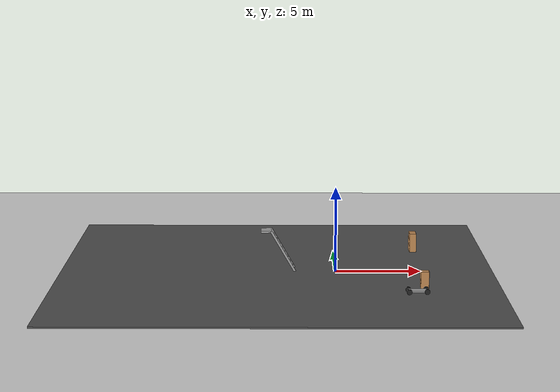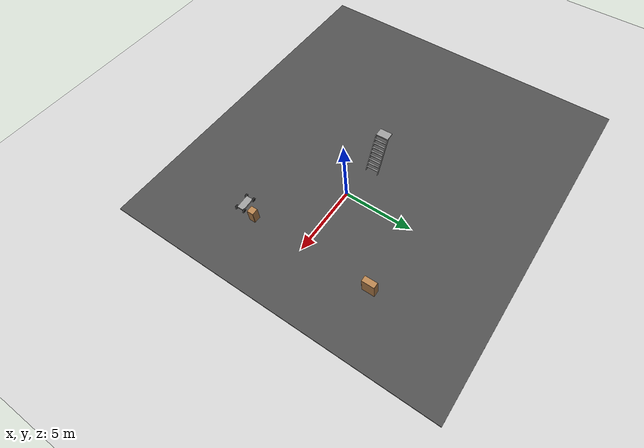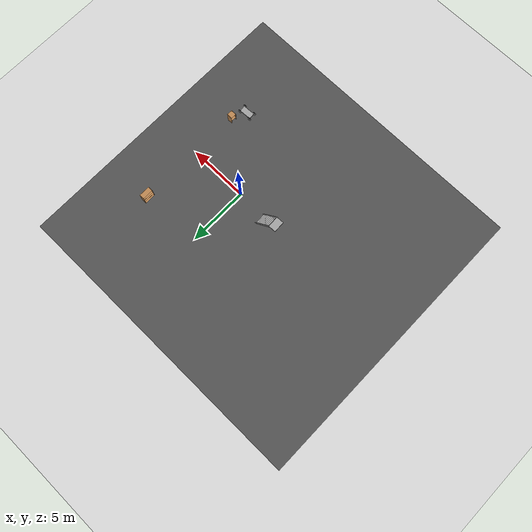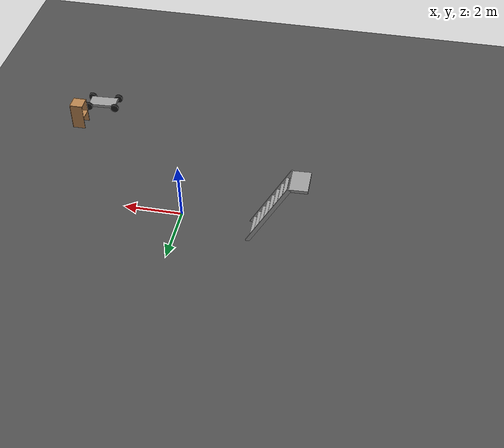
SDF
<sdf version="1.6">
 <world name="default">
  <light name="sun" type="directional">
   <pose>0 0 15 0 -0 0</pose>
   <diffuse>0.8 0.8 0.8 1</diffuse>
   <specular>0.2 0.2 0.2 1</specular>
   <attenuation>
    <range>1000</range>
    <constant>0.9</constant>
    <linear>0.01</linear>
    <quadratic>0.001</quadratic>
   </attenuation>
   <direction>-0.5 0.1 -0.9</direction>
  </light>
  <model name="ground_plane">
   <static>1</static>
   <link name="link">
    <collision name="collision">
     <geometry><plane><normal>0 0 1</normal><size>100 100</size></plane></geometry>
     <surface><friction><ode><mu>100</mu><mu2>50</mu2></ode></friction></surface>
    </collision>
    <visual name="visual">
     <transparency>1</transparency>
     <cast_shadows>0</cast_shadows>
     <geometry><plane><normal>0 0 1</normal><size>100 100</size></plane></geometry>
     <material>
      <script><uri>file://media/materials/scripts/gazebo.material</uri><name>Gazebo/Grey</name></script>
     </material>
    </visual>
   </link>
  </model>
  <gravity>0 0 -9.8</gravity>
  <magnetic_field>6e-06 2.3e-05 -4.2e-05</magnetic_field>
  <atmosphere type="adiabatic"/>
  <physics name="default_physics" default="0" type="ode">
   <max_step_size>0.001</max_step_size>
   <real_time_factor>1</real_time_factor>
   <real_time_update_rate>1000</real_time_update_rate>
  </physics>
  <scene><ambient>0.4 0.4 0.4 1</ambient><background>0.7 0.7 0.7 1</background><shadows>1</shadows></scene>
  <spherical_coordinates>
   <surface_model>EARTH_WGS84</surface_model>
   <latitude_deg>0</latitude_deg>
   <longitude_deg>0</longitude_deg>
   <elevation>0</elevation>
   <heading_deg>0</heading_deg>
  </spherical_coordinates>
  <model name="bookshelf">
   <static>1</static>
   <link name="link">
    <inertial><mass>1</mass></inertial>
    <collision name="back">
     <pose>0 0.005 0.6 0 -0 0</pose>
     <geometry><box><size>0.9 0.01 1.2</size></box></geometry>
    </collision>
    <visual name="visual1">
     <pose>0 0.005 0.6 0 -0 0</pose>
     <geometry><box><size>0.9 0.01 1.2</size></box></geometry>
     <material>
      <script><uri>file://media/materials/scripts/gazebo.material</uri><name>Gazebo/Wood</name></script>
     </material>
    </visual>
    <collision name="left_side">
     <pose>0.45 -0.195 0.6 0 -0 0</pose>
     <geometry><box><size>0.02 0.4 1.2</size></box></geometry>
    </collision>
    <visual name="visual2">
     <pose>0.45 -0.195 0.6 0 -0 0</pose>
     <geometry><box><size>0.02 0.4 1.2</size></box></geometry>
     <material>
      <script><uri>file://media/materials/scripts/gazebo.material</uri><name>Gazebo/Wood</name></script>
     </material>
    </visual>
    <collision name="right_side">
     <pose>-0.45 -0.195 0.6 0 -0 0</pose>
     <geometry><box><size>0.02 0.4 1.2</size></box></geometry>
    </collision>
    <visual name="visual3">
     <pose>-0.45 -0.195 0.6 0 -0 0</pose>
     <geometry><box><size>0.02 0.4 1.2</size></box></geometry>
     <material>
      <script><uri>file://media/materials/scripts/gazebo.material</uri><name>Gazebo/Wood</name></script>
     </material>
    </visual>
    <collision name="bottom">
     <pose>0 -0.195 0.03 0 -0 0</pose>
     <geometry><box><size>0.88 0.4 0.06</size></box></geometry>
    </collision>
    <visual name="visual4">
     <pose>0 -0.195 0.03 0 -0 0</pose>
     <geometry><box><size>0.88 0.4 0.06</size></box></geometry>
     <material>
      <script><uri>file://media/materials/scripts/gazebo.material</uri><name>Gazebo/Wood</name></script>
     </material>
    </visual>
    <collision name="top">
     <pose>0 -0.195 1.19 0 -0 0</pose>
     <geometry><box><size>0.88 0.4 0.02</size></box></geometry>
    </collision>
    <visual name="visual5">
     <pose>0 -0.195 1.19 0 -0 0</pose>
     <geometry><box><size>0.88 0.4 0.02</size></box></geometry>
     <material>
      <script><uri>file://media/materials/scripts/gazebo.material</uri><name>Gazebo/Wood</name></script>
     </material>
    </visual>
    <collision name="low_shelf">
     <pose>0 -0.195 0.43 0 -0 0</pose>
     <geometry><box><size>0.88 0.4 0.02</size></box></geometry>
    </collision>
    <visual name="visual6">
     <pose>0 -0.195 0.43 0 -0 0</pose>
     <geometry><box><size>0.88 0.4 0.02</size></box></geometry>
     <material>
      <script><uri>file://media/materials/scripts/gazebo.material</uri><name>Gazebo/Wood</name></script>
     </material>
    </visual>
    <collision name="high_shelf">
     <pose>0 -0.195 0.8 0 -0 0</pose>
     <geometry><box><size>0.88 0.4 0.02</size></box></geometry>
    </collision>
    <visual name="visual7">
     <pose>0 -0.195 0.8 0 -0 0</pose>
     <geometry><box><size>0.88 0.4 0.02</size></box></geometry>
     <material>
      <script><uri>file://media/materials/scripts/gazebo.material</uri><name>Gazebo/Wood</name></script>
     </material>
    </visual>
   </link>
   <pose>5.1409 5.15783 0 0 0 -1.56407</pose>
  </model>
  <model name="asphalt_plane">
   <static>1</static>
   <link name="link">
    <collision name="collision"><geometry><box><size>25.3809 24.4231 0.1</size></box></geometry></collision>
    <visual name="visual">
     <cast_shadows>0</cast_shadows>
     <geometry><box><size>25.3809 24.4231 0.1</size></box></geometry>
     <material>
      <script>
       <uri>model://asphalt_plane/materials/scripts</uri>
       <uri>model://asphalt_plane/materials/textures</uri>
       <name>vrc/asphalt</name>
      </script>
     </material>
    </visual>
   </link>
   <pose>-3.45948 0.321283 0 0 -0 0</pose>
  </model>
  <model name="cabinet">
   <static>1</static>
   <link name="cabinet_bottom_plate">
    <inertial>
     <pose>0 0 -1 0 -0 0</pose>
     <inertia><ixx>2.05</ixx><ixy>0</ixy><ixz>0</ixz><iyy>2.05</iyy><iyz>0</iyz><izz>2.05</izz></inertia>
     <mass>25</mass>
    </inertial>
    <collision name="cabinet_bottom_plate_geom">
     <pose>0 0 0.01 0 -0 0</pose>
     <geometry><box><size>0.45 0.45 0.02</size></box></geometry>
    </collision>
    <visual name="cabinet_bottom_plate_geom_visual">
     <pose>0 0 0.01 0 -0 0</pose>
     <geometry><box><size>0.45 0.45 0.02</size></box></geometry>
     <material>
      <script><uri>file://media/materials/scripts/gazebo.material</uri><name>Gazebo/Wood</name></script>
     </material>
    </visual>
    <collision name="cabinet_bottom_plate_geom_cabinet_back_plate">
     <pose>0.235 0 0.51 0 -0 0</pose>
     <geometry><box><size>0.02 0.45 1.02</size></box></geometry>
    </collision>
    <visual name="cabinet_bottom_plate_geom_cabinet_back_plate_visual">
     <pose>0.235 0 0.51 0 -0 0</pose>
     <geometry><box><size>0.02 0.45 1.02</size></box></geometry>
     <material>
      <script><uri>file://media/materials/scripts/gazebo.material</uri><name>Gazebo/Wood</name></script>
     </material>
    </visual>
    <collision name="cabinet_bottom_plate_geom_cabinet_left_plate">
     <pose>0 0.235 0.51 0 -0 0</pose>
     <geometry><box><size>0.45 0.02 1.02</size></box></geometry>
    </collision>
    <visual name="cabinet_bottom_plate_geom_cabinet_left_plate_visual">
     <pose>0 0.235 0.51 0 -0 0</pose>
     <geometry><box><size>0.45 0.02 1.02</size></box></geometry>
     <material>
      <script><uri>file://media/materials/scripts/gazebo.material</uri><name>Gazebo/Wood</name></script>
     </material>
    </visual>
    <collision name="cabinet_bottom_plate_geom_cabinet_middle_plate">
     <pose>0 0 0.51 0 -0 0</pose>
     <geometry><box><size>0.45 0.45 0.02</size></box></geometry>
    </collision>
    <visual name="cabinet_bottom_plate_geom_cabinet_middle_plate_visual">
     <pose>0 0 0.51 0 -0 0</pose>
     <geometry><box><size>0.45 0.45 0.02</size></box></geometry>
     <material>
      <script><uri>file://media/materials/scripts/gazebo.material</uri><name>Gazebo/Wood</name></script>
     </material>
    </visual>
    <collision name="cabinet_bottom_plate_geom_cabinet_right_plate">
     <pose>0 -0.235 0.51 0 -0 0</pose>
     <geometry><box><size>0.45 0.02 1.02</size></box></geometry>
    </collision>
    <visual name="cabinet_bottom_plate_geom_cabinet_right_plate_visual">
     <pose>0 -0.235 0.51 0 -0 0</pose>
     <geometry><box><size>0.45 0.02 1.02</size></box></geometry>
     <material>
      <script><uri>file://media/materials/scripts/gazebo.material</uri><name>Gazebo/Wood</name></script>
     </material>
    </visual>
    <collision name="cabinet_bottom_plate_geom_cabinet_top_plate">
     <pose>0 0 1.01 0 -0 0</pose>
     <geometry><box><size>0.45 0.45 0.02</size></box></geometry>
    </collision>
    <visual name="cabinet_bottom_plate_geom_cabinet_top_plate_visual">
     <pose>0 0 1.01 0 -0 0</pose>
     <geometry><box><size>0.45 0.45 0.02</size></box></geometry>
     <material>
      <script><uri>file://media/materials/scripts/gazebo.material</uri><name>Gazebo/Wood</name></script>
     </material>
    </visual>
   </link>
   <pose>4.88899 -3.94481 0 0 -0 0</pose>
  </model>
  <model name="cart_front_steer">
   <link name="chassis">
    <pose>0 0 0.15 0 -0 0</pose>
    <inertial>
     <pose>0.1 0 0 0 -0 0</pose>
     <mass>10</mass>
     <inertia>
      <ixx>0.216667</ixx>
      <iyy>0.841667</iyy>
      <izz>1.04167</izz>
      <ixy>0</ixy>
      <ixz>0</ixz>
      <iyz>0</iyz>
     </inertia>
    </inertial>
    <collision name="collision"><geometry><box><size>1 0.5 0.1</size></box></geometry></collision>
    <visual name="visual">
     <geometry><box><size>1 0.5 0.1</size></box></geometry>
     <material>
      <script><uri>file://media/materials/scripts/gazebo.material</uri><name>Gazebo/Grey</name></script>
     </material>
    </visual>
   </link>
   <link name="wheel_front_left">
    <pose>0.5 0.298 0.15 -1.5708 -0.087266 0</pose>
    <inertial>
     <mass>0.5</mass>
     <inertia>
      <ixx>0.00307917</ixx>
      <iyy>0.00307917</iyy>
      <izz>0.005625</izz>
      <ixy>0</ixy>
      <ixz>0</ixz>
      <iyz>0</iyz>
     </inertia>
    </inertial>
    <collision name="collision">
     <geometry><cylinder><radius>0.15</radius><length>0.08</length></cylinder></geometry>
    </collision>
    <visual name="visual">
     <geometry><cylinder><radius>0.15</radius><length>0.08</length></cylinder></geometry>
     <material>
      <script><uri>file://media/materials/scripts/gazebo.material</uri><name>Gazebo/Black</name></script>
     </material>
    </visual>
   </link>
   <joint name="wheel_front_left_steer_spin" type="universal">
    <parent>chassis</parent>
    <child>wheel_front_left</child>
    <axis>
     <xyz>0 -1 0</xyz>
     <limit><lower>-0.610865</lower><upper>0.610865</upper></limit>
     <use_parent_model_frame>0</use_parent_model_frame>
     <dynamics><spring_reference>0</spring_reference><spring_stiffness>0</spring_stiffness></dynamics>
    </axis>
    <axis2>
     <xyz>0 0 1</xyz>
     <use_parent_model_frame>0</use_parent_model_frame>
     <dynamics><spring_reference>0</spring_reference><spring_stiffness>0</spring_stiffness></dynamics>
    </axis2>
   </joint>
   <link name="wheel_front_right">
    <pose>0.5 -0.298 0.15 -1.5708 -0.087266 0</pose>
    <inertial>
     <mass>0.5</mass>
     <inertia>
      <ixx>0.00307917</ixx>
      <iyy>0.00307917</iyy>
      <izz>0.005625</izz>
      <ixy>0</ixy>
      <ixz>0</ixz>
      <iyz>0</iyz>
     </inertia>
    </inertial>
    <collision name="collision">
     <geometry><cylinder><radius>0.15</radius><length>0.08</length></cylinder></geometry>
    </collision>
    <visual name="visual">
     <geometry><cylinder><radius>0.15</radius><length>0.08</length></cylinder></geometry>
     <material>
      <script><uri>file://media/materials/scripts/gazebo.material</uri><name>Gazebo/Black</name></script>
     </material>
    </visual>
   </link>
   <joint name="wheel_front_right_steer_spin" type="universal">
    <parent>chassis</parent>
    <child>wheel_front_right</child>
    <axis>
     <xyz>0 -1 0</xyz>
     <limit><lower>-0.610865</lower><upper>0.610865</upper></limit>
     <use_parent_model_frame>0</use_parent_model_frame>
     <dynamics><spring_reference>0</spring_reference><spring_stiffness>0</spring_stiffness></dynamics>
    </axis>
    <axis2>
     <xyz>0 0 1</xyz>
     <use_parent_model_frame>0</use_parent_model_frame>
     <dynamics><spring_reference>0</spring_reference><spring_stiffness>0</spring_stiffness></dynamics>
    </axis2>
   </joint>
   <link name="wheel_rear_left">
    <pose>-0.5 0.298 0.15 -1.5708 0 0</pose>
    <inertial>
     <mass>0.5</mass>
     <inertia>
      <ixx>0.00307917</ixx>
      <iyy>0.00307917</iyy>
      <izz>0.005625</izz>
      <ixy>0</ixy>
      <ixz>0</ixz>
      <iyz>0</iyz>
     </inertia>
    </inertial>
    <collision name="collision">
     <geometry><cylinder><radius>0.15</radius><length>0.08</length></cylinder></geometry>
    </collision>
    <visual name="visual">
     <geometry><cylinder><radius>0.15</radius><length>0.08</length></cylinder></geometry>
     <material>
      <script><uri>file://media/materials/scripts/gazebo.material</uri><name>Gazebo/Black</name></script>
     </material>
    </visual>
   </link>
   <joint name="wheel_rear_left_spin" type="revolute">
    <parent>chassis</parent>
    <child>wheel_rear_left</child>
    <axis>
     <xyz>0 0 1</xyz>
     <use_parent_model_frame>0</use_parent_model_frame>
     <limit><lower>-1e+16</lower><upper>1e+16</upper></limit>
     <dynamics><spring_reference>0</spring_reference><spring_stiffness>0</spring_stiffness></dynamics>
    </axis>
   </joint>
   <link name="wheel_rear_right">
    <pose>-0.5 -0.298 0.15 -1.5708 0 0</pose>
    <inertial>
     <mass>0.5</mass>
     <inertia>
      <ixx>0.00307917</ixx>
      <iyy>0.00307917</iyy>
      <izz>0.005625</izz>
      <ixy>0</ixy>
      <ixz>0</ixz>
      <iyz>0</iyz>
     </inertia>
    </inertial>
    <collision name="collision">
     <geometry><cylinder><radius>0.15</radius><length>0.08</length></cylinder></geometry>
    </collision>
    <visual name="visual">
     <geometry><cylinder><radius>0.15</radius><length>0.08</length></cylinder></geometry>
     <material>
      <script><uri>file://media/materials/scripts/gazebo.material</uri><name>Gazebo/Black</name></script>
     </material>
    </visual>
   </link>
   <joint name="wheel_rear_right_spin" type="revolute">
    <parent>chassis</parent>
    <child>wheel_rear_right</child>
    <axis>
     <xyz>0 0 1</xyz>
     <use_parent_model_frame>0</use_parent_model_frame>
     <limit><lower>-1e+16</lower><upper>1e+16</upper></limit>
     <dynamics><spring_reference>0</spring_reference><spring_stiffness>0</spring_stiffness></dynamics>
    </axis>
   </joint>
   <pose>4.41457 -5.14959 0.049998 1.4e-05 -1e-06 0.049377</pose>
  </model>
  <model name="ladder_60deg_0rails">
   <static>1</static>
   <link name="step0">
    <pose>0 0.15396 0.266667 0 -0 0</pose>
    <inertial>
     <mass>9.75482</mass>
     <inertia>
      <ixx>0.00957124</ixx>
      <iyy>0.65963</iyy>
      <izz>0.666842</izz>
      <ixy>0</ixy>
      <ixz>0</ixz>
      <iyz>0</iyz>
     </inertia>
    </inertial>
    <collision name="collision"><geometry><box><size>0.9 0.1016 0.0381</size></box></geometry></collision>
    <visual name="visual">
     <geometry><box><size>0.9 0.1016 0.0381</size></box></geometry>
     <material>
      <script><uri>file://media/materials/scripts/gazebo.material</uri><name>Gazebo/Grey</name></script>
     </material>
    </visual>
   </link>
   <link name="step1">
    <pose>0 0.30792 0.533333 0 -0 0</pose>
    <inertial>
     <mass>9.75482</mass>
     <inertia>
      <ixx>0.00957124</ixx>
      <iyy>0.65963</iyy>
      <izz>0.666842</izz>
      <ixy>0</ixy>
      <ixz>0</ixz>
      <iyz>0</iyz>
     </inertia>
    </inertial>
    <collision name="collision"><geometry><box><size>0.9 0.1016 0.0381</size></box></geometry></collision>
    <visual name="visual">
     <geometry><box><size>0.9 0.1016 0.0381</size></box></geometry>
     <material>
      <script><uri>file://media/materials/scripts/gazebo.material</uri><name>Gazebo/Grey</name></script>
     </material>
    </visual>
   </link>
   <link name="step2">
    <pose>0 0.46188 0.8 0 -0 0</pose>
    <inertial>
     <mass>9.75482</mass>
     <inertia>
      <ixx>0.00957124</ixx>
      <iyy>0.65963</iyy>
      <izz>0.666842</izz>
      <ixy>0</ixy>
      <ixz>0</ixz>
      <iyz>0</iyz>
     </inertia>
    </inertial>
    <collision name="collision"><geometry><box><size>0.9 0.1016 0.0381</size></box></geometry></collision>
    <visual name="visual">
     <geometry><box><size>0.9 0.1016 0.0381</size></box></geometry>
     <material>
      <script><uri>file://media/materials/scripts/gazebo.material</uri><name>Gazebo/Grey</name></script>
     </material>
    </visual>
   </link>
   <link name="step3">
    <pose>0 0.61584 1.06667 0 -0 0</pose>
    <inertial>
     <mass>9.75482</mass>
     <inertia>
      <ixx>0.00957124</ixx>
      <iyy>0.65963</iyy>
      <izz>0.666842</izz>
      <ixy>0</ixy>
      <ixz>0</ixz>
      <iyz>0</iyz>
     </inertia>
    </inertial>
    <collision name="collision"><geometry><box><size>0.9 0.1016 0.0381</size></box></geometry></collision>
    <visual name="visual">
     <geometry><box><size>0.9 0.1016 0.0381</size></box></geometry>
     <material>
      <script><uri>file://media/materials/scripts/gazebo.material</uri><name>Gazebo/Grey</name></script>
     </material>
    </visual>
   </link>
   <link name="step4">
    <pose>0 0.7698 1.33333 0 -0 0</pose>
    <inertial>
     <mass>9.75482</mass>
     <inertia>
      <ixx>0.00957124</ixx>
      <iyy>0.65963</iyy>
      <izz>0.666842</izz>
      <ixy>0</ixy>
      <ixz>0</ixz>
      <iyz>0</iyz>
     </inertia>
    </inertial>
    <collision name="collision"><geometry><box><size>0.9 0.1016 0.0381</size></box></geometry></collision>
    <visual name="visual">
     <geometry><box><size>0.9 0.1016 0.0381</size></box></geometry>
     <material>
      <script><uri>file://media/materials/scripts/gazebo.material</uri><name>Gazebo/Grey</name></script>
     </material>
    </visual>
   </link>
   <link name="step5">
    <pose>0 0.92376 1.6 0 -0 0</pose>
    <inertial>
     <mass>9.75482</mass>
     <inertia>
      <ixx>0.00957124</ixx>
      <iyy>0.65963</iyy>
      <izz>0.666842</izz>
      <ixy>0</ixy>
      <ixz>0</ixz>
      <iyz>0</iyz>
     </inertia>
    </inertial>
    <collision name="collision"><geometry><box><size>0.9 0.1016 0.0381</size></box></geometry></collision>
    <visual name="visual">
     <geometry><box><size>0.9 0.1016 0.0381</size></box></geometry>
     <material>
      <script><uri>file://media/materials/scripts/gazebo.material</uri><name>Gazebo/Grey</name></script>
     </material>
    </visual>
   </link>
   <link name="step6">
    <pose>0 1.07772 1.86667 0 -0 0</pose>
    <inertial>
     <mass>9.75482</mass>
     <inertia>
      <ixx>0.00957124</ixx>
      <iyy>0.65963</iyy>
      <izz>0.666842</izz>
      <ixy>0</ixy>
      <ixz>0</ixz>
      <iyz>0</iyz>
     </inertia>
    </inertial>
    <collision name="collision"><geometry><box><size>0.9 0.1016 0.0381</size></box></geometry></collision>
    <visual name="visual">
     <geometry><box><size>0.9 0.1016 0.0381</size></box></geometry>
     <material>
      <script><uri>file://media/materials/scripts/gazebo.material</uri><name>Gazebo/Grey</name></script>
     </material>
    </visual>
   </link>
   <link name="step7">
    <pose>0 1.23168 2.13333 0 -0 0</pose>
    <inertial>
     <mass>9.75482</mass>
     <inertia>
      <ixx>0.00957124</ixx>
      <iyy>0.65963</iyy>
      <izz>0.666842</izz>
      <ixy>0</ixy>
      <ixz>0</ixz>
      <iyz>0</iyz>
     </inertia>
    </inertial>
    <collision name="collision"><geometry><box><size>0.9 0.1016 0.0381</size></box></geometry></collision>
    <visual name="visual">
     <geometry><box><size>0.9 0.1016 0.0381</size></box></geometry>
     <material>
      <script><uri>file://media/materials/scripts/gazebo.material</uri><name>Gazebo/Grey</name></script>
     </material>
    </visual>
   </link>
   <link name="landing">
    <pose>0 1.68564 2.4 0 -0 0</pose>
    <inertial>
     <mass>57.6072</mass>
     <inertia><ixx>1.73518</ixx><iyy>3.89545</iyy><izz>5.6167</izz><ixy>0</ixy><ixz>0</ixz><iyz>0</iyz></inertia>
    </inertial>
    <collision name="collision"><geometry><box><size>0.9 0.6 0.1016</size></box></geometry></collision>
    <visual name="visual">
     <geometry><box><size>0.9 0.6 0.1016</size></box></geometry>
     <material>
      <script><uri>file://media/materials/scripts/gazebo.material</uri><name>Gazebo/Grey</name></script>
     </material>
    </visual>
   </link>
   <link name="left_side_wall">
    <pose>-0.45 0.69282 1.2 1.0472 -0 0</pose>
    <collision name="collision"><geometry><box><size>0.0508 2.85128 0.13</size></box></geometry></collision>
    <visual name="visual">
     <geometry><box><size>0.0508 2.85128 0.13</size></box></geometry>
     <material>
      <script><uri>file://media/materials/scripts/gazebo.material</uri><name>Gazebo/Grey</name></script>
     </material>
    </visual>
   </link>
   <link name="right_side_wall">
    <pose>0.45 0.69282 1.2 1.0472 -0 0</pose>
    <collision name="collision"><geometry><box><size>0.0508 2.85128 0.13</size></box></geometry></collision>
    <visual name="visual">
     <geometry><box><size>0.0508 2.85128 0.13</size></box></geometry>
     <material>
      <script><uri>file://media/materials/scripts/gazebo.material</uri><name>Gazebo/Grey</name></script>
     </material>
    </visual>
   </link>
   <pose>-2.38256 0.395704 0 0 -0 1.60813</pose>
  </model>
 </world>
</sdf>
